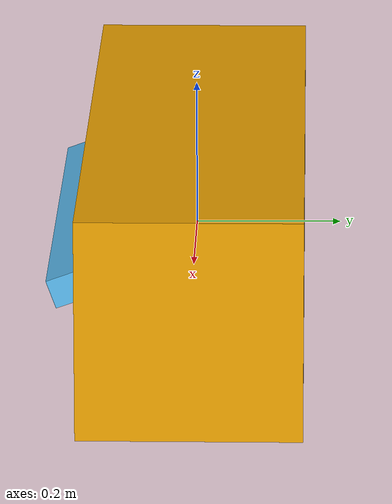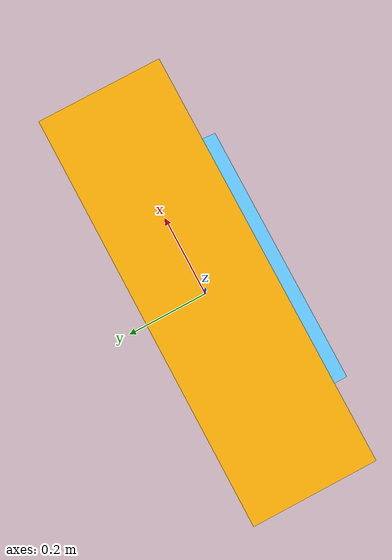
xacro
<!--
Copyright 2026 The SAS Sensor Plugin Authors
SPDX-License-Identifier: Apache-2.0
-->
<?xml version="1.0"?>
<robot name="sas_test_carrier" xmlns:xacro="http://www.ros.org/wiki/xacro">
  <xacro:arg name="sensor_type" default="gpu_ray"/>
  <xacro:arg name="prf" default="10.0"/>
  <xacro:arg name="h_samples" default="512"/>
  <xacro:arg name="v_samples" default="512"/>
  <xacro:arg name="debug" default="false"/>

  <xacro:include filename="$(find sas_description)/urdf/sas_array.xacro"/>

  <link name="base_link">
    <inertial>
      <mass value="100.0"/>
      <inertia ixx="1.5" ixy="0" ixz="0" iyy="9.0" iyz="0" izz="9.0"/>
    </inertial>
    <visual>
      <geometry><box size="1.0 0.3 0.3"/></geometry>
    </visual>
    <collision>
      <geometry><box size="1.0 0.3 0.3"/></geometry>
    </collision>
  </link>

  <!-- Starboard array, boresight 20 deg (0.35 rad) below horizontal; array y = vehicle +x. -->
  <xacro:sas_array parent="base_link" xyz="0.0 -0.17 0.0" rpy="0 0.35 -1.5708"
                   sensor_type="$(arg sensor_type)" prf="$(arg prf)"
                   h_samples="$(arg h_samples)" v_samples="$(arg v_samples)"
                   debug="$(arg debug)"/>

  <gazebo reference="base_link">
    <gravity>false</gravity>
  </gazebo>

  <gazebo>
    <plugin name="carrier_mover" filename="libgazebo_ros_planar_move.so">
      <ros><namespace>/sas</namespace></ros>
      <update_rate>1000</update_rate>
      <publish_rate>10</publish_rate>
      <publish_odom>false</publish_odom>
      <publish_odom_tf>false</publish_odom_tf>
    </plugin>
  </gazebo>
</robot>

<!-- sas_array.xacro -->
<robot xmlns:xacro="http://www.ros.org/wiki/xacro">
  <xacro:macro name="sas_array"
               params="parent xyz rpy prefix:=''
                       sensor_type:=gpu_ray prf:=10.0 h_samples:=512 v_samples:=512
                       num_elements:=16 element_spacing:=0.04
                       topic:=/sas/ping seed:=12345 cell_size:=0.04 noise_std:=1e-7 debug:=false">

    <link name="${prefix}sas_array_link">
      <inertial>
        <mass value="0.5"/>
        <inertia ixx="1e-3" ixy="0" ixz="0" iyy="1e-3" iyz="0" izz="1e-3"/>
      </inertial>
      <visual>
        <geometry><box size="0.04 ${num_elements * element_spacing} 0.04"/></geometry>
      </visual>
    </link>

    <joint name="${prefix}sas_array_joint" type="fixed">
      <parent link="${parent}"/>
      <child link="${prefix}sas_array_link"/>
      <origin xyz="${xyz}" rpy="${rpy}"/>
    </joint>

    <!-- Gazebo lumps fixed joints: the sensor ends up on the parent link with the joint offset as
         its pose. The plugin composes sensor pose and link pose, so the result is the same. -->
    <gazebo reference="${prefix}sas_array_link">
      <sensor type="${sensor_type}" name="${prefix}sas_sonar">
        <always_on>true</always_on>
        <update_rate>${prf}</update_rate>
        <visualize>false</visualize>
        <ray>
          <scan>
            <!-- Shadows need fine rays: ~0.002 rad at 512 samples (plan 004 log). -->
            <horizontal>
              <samples>${h_samples}</samples>
              <resolution>1</resolution>
              <min_angle>-0.40</min_angle>
              <max_angle>0.40</max_angle>
            </horizontal>
            <vertical>
              <samples>${v_samples}</samples>
              <resolution>1</resolution>
              <min_angle>-0.80</min_angle>
              <max_angle>0.20</max_angle>
            </vertical>
          </scan>
          <range>
            <min>1.0</min>
            <max>70.0</max>
            <resolution>0.001</resolution>
          </range>
        </ray>

        <plugin name="${prefix}sas_sonar_plugin" filename="libsas_sonar_plugin.so">
          <ros>
            <namespace>/sas</namespace>
          </ros>
          <topic>${topic}</topic>
          <frame_id>${prefix}sas_array_link</frame_id>

          <!-- Waveform (REQ-001) -->
          <sound_speed>1500.0</sound_speed>
          <center_frequency>100000.0</center_frequency>
          <bandwidth>20000.0</bandwidth>
          <pulse_length>0.005</pulse_length>
          <sample_rate>40000.0</sample_rate>
          <min_range>2.0</min_range>
          <max_range>60.0</max_range>

          <!-- Array and beams (REQ-002, REQ-003) -->
          <num_elements>${num_elements}</num_elements>
          <element_spacing>${element_spacing}</element_spacing>
          <element_length>0.04</element_length>
          <element_height>0.015</element_height>
          <tx_length>0.04</tx_length>
          <tx_height>0.015</tx_height>

          <!-- Scene (REQ-004, REQ-005, REQ-007) -->
          <cell_size>${cell_size}</cell_size>
          <max_incidence_deg>88.0</max_incidence_deg>
          <default_backscatter_db>-27.0</default_backscatter_db>

          <!-- Propagation and output (REQ-006, REQ-009) -->
          <source_level>0.0</source_level>
          <noise_std>${noise_std}</noise_std>
          <seed>${seed}</seed>
          <debug_scatterers>${debug}</debug_scatterers>
        </plugin>
      </sensor>
    </gazebo>
  </xacro:macro>
</robot>
